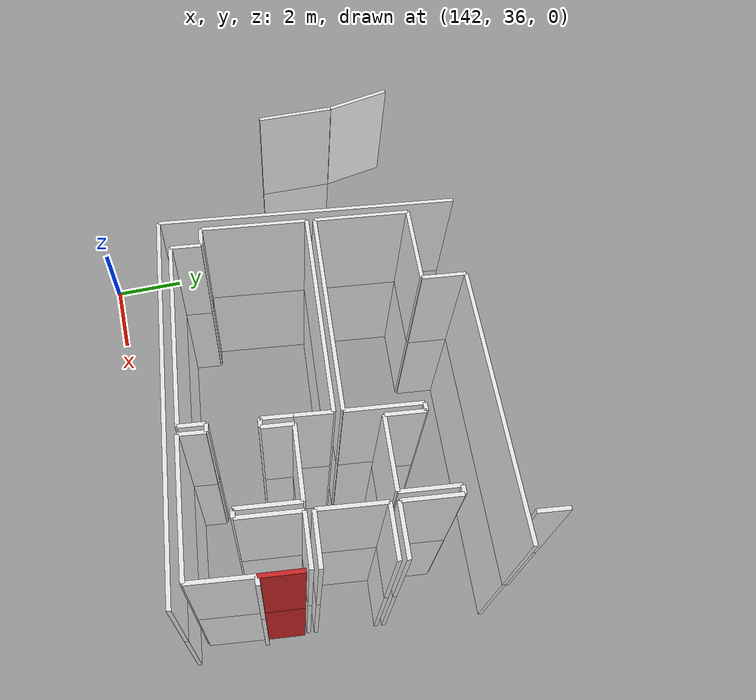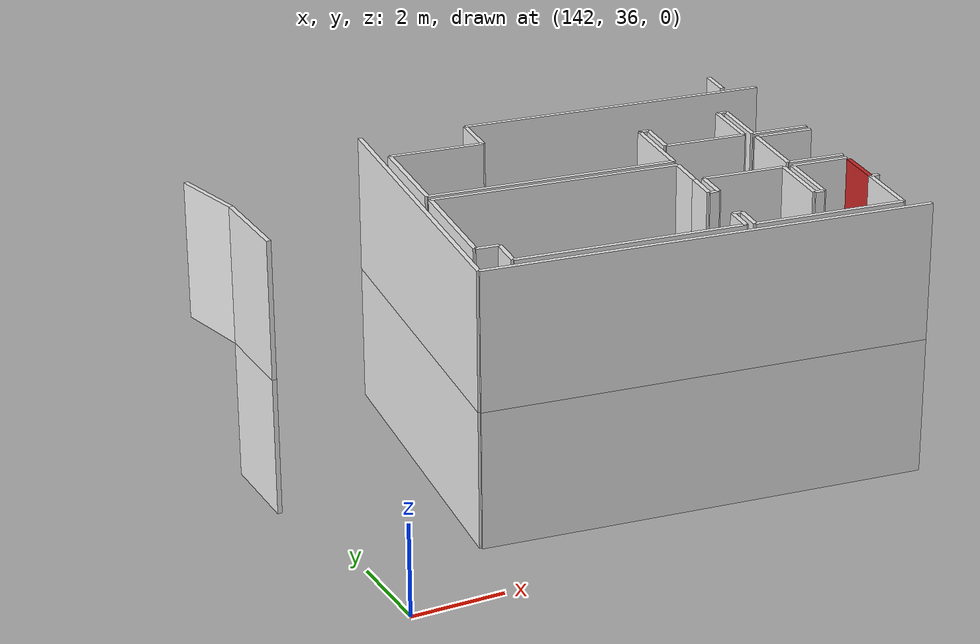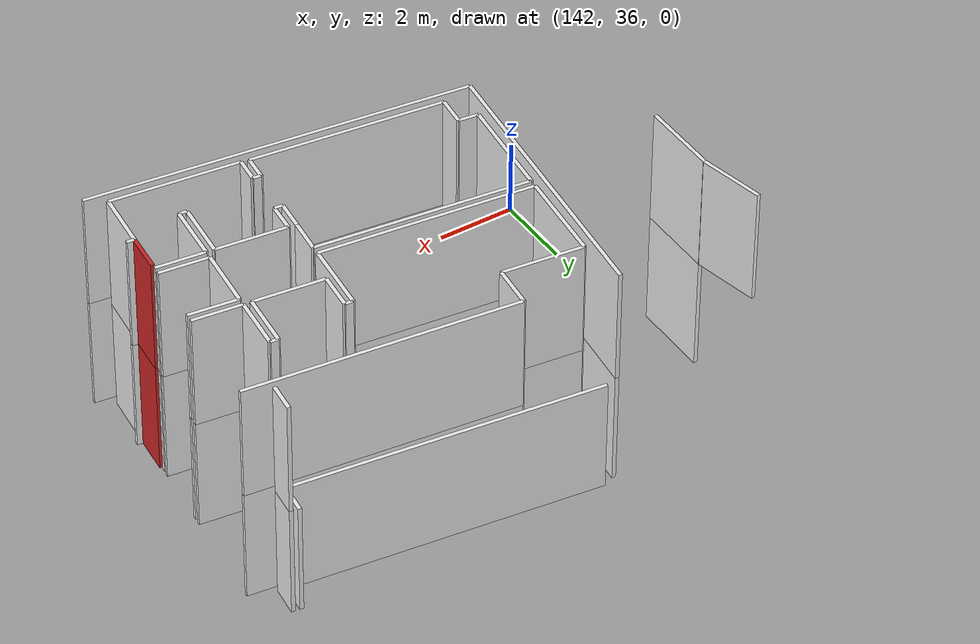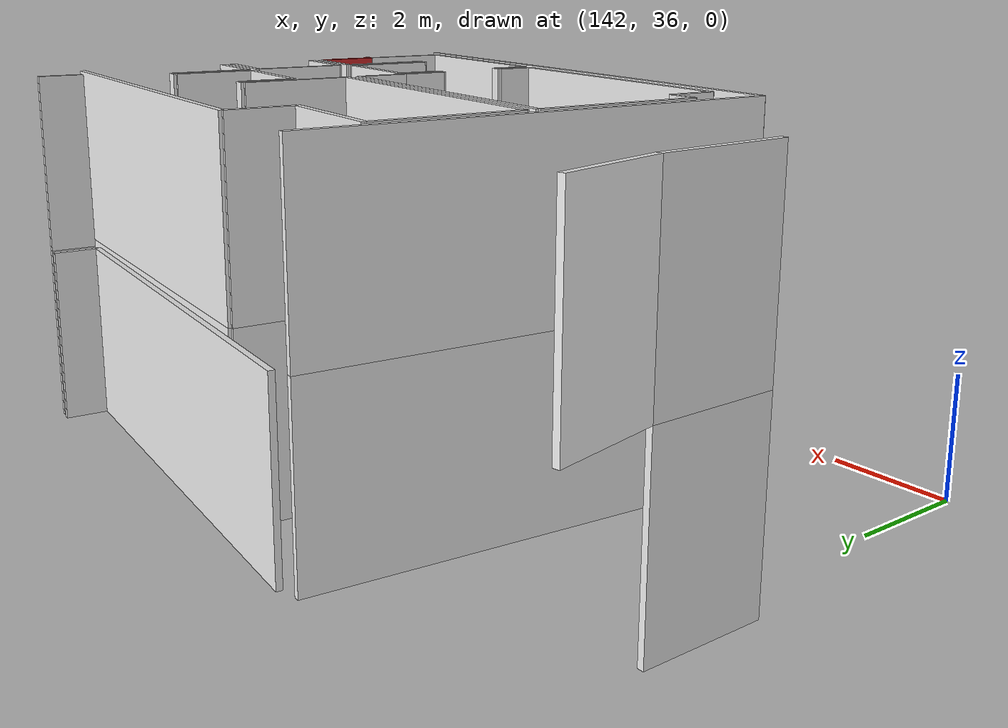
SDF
<sdf version="1.6">
 <world name="default">
  <model name="wall_153.8_39.0_1.5">
   <static>true</static>
   <pose>153.77499999999418 38.99500000011176 1.5 0 0 -1.6814535479881518</pose>
   <link name="link">
    <visual name="visual">
     <geometry><box><size>0.9960923654221514 0.1 3</size></box></geometry>
     <material>
      <script><uri>file://media/materials/scripts/gazebo.material</uri><name>Gazebo/Red</name></script>
     </material>
    </visual>
    <collision name="collision"><geometry><box><size>0.9960923654221514 0.1 3</size></box></geometry></collision>
   </link>
  </model>
  <model name="wall_153.8_39.0_4.5">
   <static>true</static>
   <pose>153.77499999999418 38.99500000011176 4.5 0 0 -1.6814535479881518</pose>
   <link name="link">
    <visual name="visual">
     <geometry><box><size>0.9960923654221514 0.1 3</size></box></geometry>
     <material>
      <script><uri>file://media/materials/scripts/gazebo.material</uri><name>Gazebo/Red</name></script>
     </material>
    </visual>
    <collision name="collision"><geometry><box><size>0.9960923654221514 0.1 3</size></box></geometry></collision>
   </link>
  </model>
  <model name="wall_150.4_39.6_1.5">
   <static>true</static>
   <pose>150.3649999999907 39.61500000022352 1.5 0 0 1.4513674008194029</pose>
   <link name="link">
    <visual name="visual">
     <geometry><box><size>0.7553806987169667 0.1 3</size></box></geometry>
     <material>
      <script><uri>file://media/materials/scripts/gazebo.material</uri><name>Gazebo/White</name></script>
     </material>
    </visual>
    <collision name="collision"><geometry><box><size>0.7553806987169667 0.1 3</size></box></geometry></collision>
   </link>
  </model>
  <model name="wall_150.5_40.4_1.5">
   <static>true</static>
   <pose>150.4649999999965 40.43000000016764 1.5 0 0 1.4464413321830076</pose>
   <link name="link">
    <visual name="visual">
     <geometry><box><size>0.8868483522074317 0.1 3</size></box></geometry>
     <material>
      <script><uri>file://media/materials/scripts/gazebo.material</uri><name>Gazebo/White</name></script>
     </material>
    </visual>
    <collision name="collision"><geometry><box><size>0.8868483522074317 0.1 3</size></box></geometry></collision>
   </link>
  </model>
  <model name="wall_147.8_41.2_1.5">
   <static>true</static>
   <pose>147.83500000002095 41.18500000005588 1.5 0 0 3.0248080581405947</pose>
   <link name="link">
    <visual name="visual">
     <geometry><box><size>5.406829015218547 0.1 3</size></box></geometry>
     <material>
      <script><uri>file://media/materials/scripts/gazebo.material</uri><name>Gazebo/White</name></script>
     </material>
    </visual>
    <collision name="collision"><geometry><box><size>5.406829015218547 0.1 3</size></box></geometry></collision>
   </link>
  </model>
  <model name="wall_145.0_40.2_1.5">
   <static>true</static>
   <pose>144.9900000000198 40.16500000003725 1.5 0 0 -1.690077564147906</pose>
   <link name="link">
    <visual name="visual">
     <geometry><box><size>2.689107658612167 0.1 3</size></box></geometry>
     <material>
      <script><uri>file://media/materials/scripts/gazebo.material</uri><name>Gazebo/White</name></script>
     </material>
    </visual>
    <collision name="collision"><geometry><box><size>2.689107658612167 0.1 3</size></box></geometry></collision>
   </link>
  </model>
  <model name="wall_145.1_38.8_1.5">
   <static>true</static>
   <pose>145.0800000000163 38.800000000046566 1.5 0 0 -0.11942892612851068</pose>
   <link name="link">
    <visual name="visual">
     <geometry><box><size>0.5035871324872246 0.1 3</size></box></geometry>
     <material>
      <script><uri>file://media/materials/scripts/gazebo.material</uri><name>Gazebo/White</name></script>
     </material>
    </visual>
    <collision name="collision"><geometry><box><size>0.5035871324872246 0.1 3</size></box></geometry></collision>
   </link>
  </model>
  <model name="wall_145.3_38.4_1.5">
   <static>true</static>
   <pose>145.2850000000035 38.389999999897555 1.5 0 0 -1.6886684299881376</pose>
   <link name="link">
    <visual name="visual">
     <geometry><box><size>0.7653103947893748 0.1 3</size></box></geometry>
     <material>
      <script><uri>file://media/materials/scripts/gazebo.material</uri><name>Gazebo/White</name></script>
     </material>
    </visual>
    <collision name="collision"><geometry><box><size>0.7653103947893748 0.1 3</size></box></geometry></collision>
   </link>
  </model>
  <model name="wall_147.7_37.7_1.5">
   <static>true</static>
   <pose>147.67499999998836 37.7249999998603 1.5 0 0 -0.11651301006280392</pose>
   <link name="link">
    <visual name="visual">
     <geometry><box><size>4.90324382422122 0.1 3</size></box></geometry>
     <material>
      <script><uri>file://media/materials/scripts/gazebo.material</uri><name>Gazebo/White</name></script>
     </material>
    </visual>
    <collision name="collision"><geometry><box><size>4.90324382422122 0.1 3</size></box></geometry></collision>
   </link>
  </model>
  <model name="wall_150.1_37.8_1.5">
   <static>true</static>
   <pose>150.14499999998952 37.75499999988824 1.5 0 0 1.4601391055905788</pose>
   <link name="link">
    <visual name="visual">
     <geometry><box><size>0.6338769595593153 0.1 3</size></box></geometry>
     <material>
      <script><uri>file://media/materials/scripts/gazebo.material</uri><name>Gazebo/White</name></script>
     </material>
    </visual>
    <collision name="collision"><geometry><box><size>0.6338769595593153 0.1 3</size></box></geometry></collision>
   </link>
  </model>
  <model name="wall_150.3_38.1_1.5">
   <static>true</static>
   <pose>150.27999999999884 38.05499999993481 1.5 0 0 -0.14888994659904642</pose>
   <link name="link">
    <visual name="visual">
     <geometry><box><size>0.20223748414268597 0.1 3</size></box></geometry>
     <material>
      <script><uri>file://media/materials/scripts/gazebo.material</uri><name>Gazebo/White</name></script>
     </material>
    </visual>
    <collision name="collision"><geometry><box><size>0.20223748414268597 0.1 3</size></box></geometry></collision>
   </link>
  </model>
  <model name="wall_150.3_37.7_1.5">
   <static>true</static>
   <pose>150.3399999999965 37.71999999997206 1.5 0 0 -1.695151321341658</pose>
   <link name="link">
    <visual name="visual">
     <geometry><box><size>0.6449806199952839 0.1 3</size></box></geometry>
     <material>
      <script><uri>file://media/materials/scripts/gazebo.material</uri><name>Gazebo/White</name></script>
     </material>
    </visual>
    <collision name="collision"><geometry><box><size>0.6449806199952839 0.1 3</size></box></geometry></collision>
   </link>
  </model>
  <model name="wall_151.9_37.2_1.5">
   <static>true</static>
   <pose>151.9199999999837 37.20999999996275 1.5 0 0 -0.11675057835937525</pose>
   <link name="link">
    <visual name="visual">
     <geometry><box><size>3.2622078413023767 0.1 3</size></box></geometry>
     <material>
      <script><uri>file://media/materials/scripts/gazebo.material</uri><name>Gazebo/White</name></script>
     </material>
    </visual>
    <collision name="collision"><geometry><box><size>3.2622078413023767 0.1 3</size></box></geometry></collision>
   </link>
  </model>
  <model name="wall_153.6_37.8_1.5">
   <static>true</static>
   <pose>153.62999999997555 37.76000000000931 1.5 0 0 1.449769106988834</pose>
   <link name="link">
    <visual name="visual">
     <geometry><box><size>1.4909057649436974 0.1 3</size></box></geometry>
     <material>
      <script><uri>file://media/materials/scripts/gazebo.material</uri><name>Gazebo/White</name></script>
     </material>
    </visual>
    <collision name="collision"><geometry><box><size>1.4909057649436974 0.1 3</size></box></geometry></collision>
   </link>
  </model>
  <model name="wall_153.2_39.7_1.5">
   <static>true</static>
   <pose>153.22000000000116 39.65999999991618 1.5 0 0 3.0291655226601732</pose>
   <link name="link">
    <visual name="visual">
     <geometry><box><size>1.2478781992477335 0.1 3</size></box></geometry>
     <material>
      <script><uri>file://media/materials/scripts/gazebo.material</uri><name>Gazebo/White</name></script>
     </material>
    </visual>
    <collision name="collision"><geometry><box><size>1.2478781992477335 0.1 3</size></box></geometry></collision>
   </link>
  </model>
  <model name="wall_152.5_39.0_1.5">
   <static>true</static>
   <pose>152.51499999998487 38.98999999999069 1.5 0 0 -1.6851599802083586</pose>
   <link name="link">
    <visual name="visual">
     <geometry><box><size>1.4897315194152685 0.1 3</size></box></geometry>
     <material>
      <script><uri>file://media/materials/scripts/gazebo.material</uri><name>Gazebo/White</name></script>
     </material>
    </visual>
    <collision name="collision"><geometry><box><size>1.4897315194152685 0.1 3</size></box></geometry></collision>
   </link>
  </model>
  <model name="wall_152.3_38.3_1.5">
   <static>true</static>
   <pose>152.3299999999872 38.26000000000931 1.5 0 0 3.0419240010121844</pose>
   <link name="link">
    <visual name="visual">
     <geometry><box><size>0.20099751243585498 0.1 3</size></box></geometry>
     <material>
      <script><uri>file://media/materials/scripts/gazebo.material</uri><name>Gazebo/White</name></script>
     </material>
    </visual>
    <collision name="collision"><geometry><box><size>0.20099751243585498 0.1 3</size></box></geometry></collision>
   </link>
  </model>
  <model name="wall_152.3_39.0_1.5">
   <static>true</static>
   <pose>152.31500000000233 39.01000000000931 1.5 0 0 1.4564326733426174</pose>
   <link name="link">
    <visual name="visual">
     <geometry><box><size>1.4897315194219107 0.1 3</size></box></geometry>
     <material>
      <script><uri>file://media/materials/scripts/gazebo.material</uri><name>Gazebo/White</name></script>
     </material>
    </visual>
    <collision name="collision"><geometry><box><size>1.4897315194219107 0.1 3</size></box></geometry></collision>
   </link>
  </model>
  <model name="wall_151.5_39.9_1.5">
   <static>true</static>
   <pose>151.50500000000466 39.85499999998137 1.5 0 0 3.0248080581431034</pose>
   <link name="link">
    <visual name="visual">
     <geometry><box><size>1.8022763384447233 0.1 3</size></box></geometry>
     <material>
      <script><uri>file://media/materials/scripts/gazebo.material</uri><name>Gazebo/White</name></script>
     </material>
    </visual>
    <collision name="collision"><geometry><box><size>1.8022763384447233 0.1 3</size></box></geometry></collision>
   </link>
  </model>
  <model name="wall_150.6_39.6_1.5">
   <static>true</static>
   <pose>150.57000000000698 39.59000000008382 1.5 0 0 -1.6784861976067038</pose>
   <link name="link">
    <visual name="visual">
     <geometry><box><size>0.7443117623918901 0.1 3</size></box></geometry>
     <material>
      <script><uri>file://media/materials/scripts/gazebo.material</uri><name>Gazebo/White</name></script>
     </material>
    </visual>
    <collision name="collision"><geometry><box><size>0.7443117623918901 0.1 3</size></box></geometry></collision>
   </link>
  </model>
  <model name="wall_150.4_39.2_1.5">
   <static>true</static>
   <pose>150.42500000001746 39.230000000214204 1.5 0 0 3.0466409471685547</pose>
   <link name="link">
    <visual name="visual">
     <geometry><box><size>0.21095023111991618 0.1 3</size></box></geometry>
     <material>
      <script><uri>file://media/materials/scripts/gazebo.material</uri><name>Gazebo/White</name></script>
     </material>
    </visual>
    <collision name="collision"><geometry><box><size>0.21095023111991618 0.1 3</size></box></geometry></collision>
   </link>
  </model>
  <model name="wall_153.5_44.8_1.5">
   <static>true</static>
   <pose>153.52499999999418 44.81499999994412 1.5 0 0 -1.6902252528468988</pose>
   <link name="link">
    <visual name="visual">
     <geometry><box><size>0.7553806987239018 0.1 3</size></box></geometry>
     <material>
      <script><uri>file://media/materials/scripts/gazebo.material</uri><name>Gazebo/White</name></script>
     </material>
    </visual>
    <collision name="collision"><geometry><box><size>0.7553806987239018 0.1 3</size></box></geometry></collision>
   </link>
  </model>
  <model name="wall_149.6_44.9_1.5">
   <static>true</static>
   <pose>149.55499999999302 44.91500000003725 1.5 0 0 3.0211592075440525</pose>
   <link name="link">
    <visual name="visual">
     <geometry><box><size>7.907275131168029 0.1 3</size></box></geometry>
     <material>
      <script><uri>file://media/materials/scripts/gazebo.material</uri><name>Gazebo/White</name></script>
     </material>
    </visual>
    <collision name="collision"><geometry><box><size>7.907275131168029 0.1 3</size></box></geometry></collision>
   </link>
  </model>
  <model name="wall_153.4_41.4_1.5">
   <static>true</static>
   <pose>153.43499999999767 41.43499999982305 1.5 0 0 3.022163727644903</pose>
   <link name="link">
    <visual name="visual">
     <geometry><box><size>1.258967831190321 0.1 3</size></box></geometry>
     <material>
      <script><uri>file://media/materials/scripts/gazebo.material</uri><name>Gazebo/White</name></script>
     </material>
    </visual>
    <collision name="collision"><geometry><box><size>1.258967831190321 0.1 3</size></box></geometry></collision>
   </link>
  </model>
  <model name="wall_152.7_40.7_1.5">
   <static>true</static>
   <pose>152.7149999999965 40.71999999997206 1.5 0 0 -1.6904748161031404</pose>
   <link name="link">
    <visual name="visual">
     <geometry><box><size>1.5913830458958753 0.1 3</size></box></geometry>
     <material>
      <script><uri>file://media/materials/scripts/gazebo.material</uri><name>Gazebo/White</name></script>
     </material>
    </visual>
    <collision name="collision"><geometry><box><size>1.5913830458958753 0.1 3</size></box></geometry></collision>
   </link>
  </model>
  <model name="wall_153.2_39.9_1.5">
   <static>true</static>
   <pose>153.24499999999534 39.85499999998137 1.5 0 0 -0.11942892631213106</pose>
   <link name="link">
    <visual name="visual">
     <geometry><box><size>1.2589678312458021 0.1 3</size></box></geometry>
     <material>
      <script><uri>file://media/materials/scripts/gazebo.material</uri><name>Gazebo/White</name></script>
     </material>
    </visual>
    <collision name="collision"><geometry><box><size>1.2589678312458021 0.1 3</size></box></geometry></collision>
   </link>
  </model>
  <model name="wall_153.8_38.5_1.5">
   <static>true</static>
   <pose>153.81499999997322 38.48999999999069 1.5 0 0 3.0367157147638757</pose>
   <link name="link">
    <visual name="visual">
     <geometry><box><size>0.19104973174969345 0.1 3</size></box></geometry>
     <material>
      <script><uri>file://media/materials/scripts/gazebo.material</uri><name>Gazebo/White</name></script>
     </material>
    </visual>
    <collision name="collision"><geometry><box><size>0.19104973174969345 0.1 3</size></box></geometry></collision>
   </link>
  </model>
  <model name="wall_153.7_44.8_1.5">
   <static>true</static>
   <pose>153.72500000000582 44.79000000003725 1.5 0 0 1.4497691069877865</pose>
   <link name="link">
    <visual name="visual">
     <geometry><box><size>0.74545288270649 0.1 3</size></box></geometry>
     <material>
      <script><uri>file://media/materials/scripts/gazebo.material</uri><name>Gazebo/White</name></script>
     </material>
    </visual>
    <collision name="collision"><geometry><box><size>0.74545288270649 0.1 3</size></box></geometry></collision>
   </link>
  </model>
  <model name="wall_153.5_41.6_1.5">
   <static>true</static>
   <pose>153.4550000000163 41.63500000000931 1.5 0 0 3.022163727644903</pose>
   <link name="link">
    <visual name="visual">
     <geometry><box><size>1.258967831190321 0.1 3</size></box></geometry>
     <material>
      <script><uri>file://media/materials/scripts/gazebo.material</uri><name>Gazebo/White</name></script>
     </material>
    </visual>
    <collision name="collision"><geometry><box><size>1.258967831190321 0.1 3</size></box></geometry></collision>
   </link>
  </model>
  <model name="wall_152.9_42.4_1.5">
   <static>true</static>
   <pose>152.9100000000035 42.39999999990687 1.5 0 0 1.4553696664370197</pose>
   <link name="link">
    <visual name="visual">
     <geometry><box><size>1.3892443988310157 0.1 3</size></box></geometry>
     <material>
      <script><uri>file://media/materials/scripts/gazebo.material</uri><name>Gazebo/White</name></script>
     </material>
    </visual>
    <collision name="collision"><geometry><box><size>1.3892443988310157 0.1 3</size></box></geometry></collision>
   </link>
  </model>
  <model name="wall_152.9_43.1_1.5">
   <static>true</static>
   <pose>152.88999999998487 43.0999999998603 1.5 0 0 3.0419240010121844</pose>
   <link name="link">
    <visual name="visual">
     <geometry><box><size>0.20099751243585498 0.1 3</size></box></geometry>
     <material>
      <script><uri>file://media/materials/scripts/gazebo.material</uri><name>Gazebo/White</name></script>
     </material>
    </visual>
    <collision name="collision"><geometry><box><size>0.20099751243585498 0.1 3</size></box></geometry></collision>
   </link>
  </model>
  <model name="wall_152.7_42.4_1.5">
   <static>true</static>
   <pose>152.70999999999185 42.419999999925494 1.5 0 0 -1.6862229871527734</pose>
   <link name="link">
    <visual name="visual">
     <geometry><box><size>1.3892443988310157 0.1 3</size></box></geometry>
     <material>
      <script><uri>file://media/materials/scripts/gazebo.material</uri><name>Gazebo/White</name></script>
     </material>
    </visual>
    <collision name="collision"><geometry><box><size>1.3892443988310157 0.1 3</size></box></geometry></collision>
   </link>
  </model>
  <model name="wall_151.7_41.8_1.5">
   <static>true</static>
   <pose>151.73500000001513 41.83499999996275 1.5 0 0 3.02480805813934</pose>
   <link name="link">
    <visual name="visual">
     <geometry><box><size>1.8022763383869123 0.1 3</size></box></geometry>
     <material>
      <script><uri>file://media/materials/scripts/gazebo.material</uri><name>Gazebo/White</name></script>
     </material>
    </visual>
    <collision name="collision"><geometry><box><size>1.8022763383869123 0.1 3</size></box></geometry></collision>
   </link>
  </model>
  <model name="wall_150.9_42.4_1.5">
   <static>true</static>
   <pose>150.89500000001863 42.40999999991618 1.5 0 0 1.4543048661080447</pose>
   <link name="link">
    <visual name="visual">
     <geometry><box><size>0.9464142855493431 0.1 3</size></box></geometry>
     <material>
      <script><uri>file://media/materials/scripts/gazebo.material</uri><name>Gazebo/White</name></script>
     </material>
    </visual>
    <collision name="collision"><geometry><box><size>0.9464142855493431 0.1 3</size></box></geometry></collision>
   </link>
  </model>
  <model name="wall_150.9_42.9_1.5">
   <static>true</static>
   <pose>150.85000000000582 42.889999999897555 1.5 0 0 3.0419240010121844</pose>
   <link name="link">
    <visual name="visual">
     <geometry><box><size>0.20099751243585498 0.1 3</size></box></geometry>
     <material>
      <script><uri>file://media/materials/scripts/gazebo.material</uri><name>Gazebo/White</name></script>
     </material>
    </visual>
    <collision name="collision"><geometry><box><size>0.20099751243585498 0.1 3</size></box></geometry></collision>
   </link>
  </model>
  <model name="wall_150.6_42.0_1.5">
   <static>true</static>
   <pose>150.64499999998952 41.98999999999069 1.5 0 0 -1.6856729322336463</pose>
   <link name="link">
    <visual name="visual">
     <geometry><box><size>1.8320753257982048 0.1 3</size></box></geometry>
     <material>
      <script><uri>file://media/materials/scripts/gazebo.material</uri><name>Gazebo/White</name></script>
     </material>
    </visual>
    <collision name="collision"><geometry><box><size>1.8320753257982048 0.1 3</size></box></geometry></collision>
   </link>
  </model>
  <model name="wall_147.9_41.4_1.5">
   <static>true</static>
   <pose>147.85499999998137 41.390000000130385 1.5 0 0 3.026645366783984</pose>
   <link name="link">
    <visual name="visual">
     <geometry><box><size>5.405672946089928 0.1 3</size></box></geometry>
     <material>
      <script><uri>file://media/materials/scripts/gazebo.material</uri><name>Gazebo/White</name></script>
     </material>
    </visual>
    <collision name="collision"><geometry><box><size>5.405672946089928 0.1 3</size></box></geometry></collision>
   </link>
  </model>
  <model name="wall_145.3_42.9_1.5">
   <static>true</static>
   <pose>145.30499999999302 42.88500000000931 1.5 0 0 1.4573613349631278</pose>
   <link name="link">
    <visual name="visual">
     <geometry><box><size>2.385330165476587 0.1 3</size></box></geometry>
     <material>
      <script><uri>file://media/materials/scripts/gazebo.material</uri><name>Gazebo/White</name></script>
     </material>
    </visual>
    <collision name="collision"><geometry><box><size>2.385330165476587 0.1 3</size></box></geometry></collision>
   </link>
  </model>
  <model name="wall_146.5_43.9_1.5">
   <static>true</static>
   <pose>146.45999999999185 43.949999999953434 1.5 0 0 -0.11710874445097873</pose>
   <link name="link">
    <visual name="visual">
     <geometry><box><size>2.0540691321857394 0.1 3</size></box></geometry>
     <material>
      <script><uri>file://media/materials/scripts/gazebo.material</uri><name>Gazebo/White</name></script>
     </material>
    </visual>
    <collision name="collision"><geometry><box><size>2.0540691321857394 0.1 3</size></box></geometry></collision>
   </link>
  </model>
  <model name="wall_147.5_44.4_1.5">
   <static>true</static>
   <pose>147.53999999997905 44.37000000011176 1.5 0 0 1.460139105632832</pose>
   <link name="link">
    <visual name="visual">
     <geometry><box><size>1.086646216650026 0.1 3</size></box></geometry>
     <material>
      <script><uri>file://media/materials/scripts/gazebo.material</uri><name>Gazebo/White</name></script>
     </material>
    </visual>
    <collision name="collision"><geometry><box><size>1.086646216650026 0.1 3</size></box></geometry></collision>
   </link>
  </model>
  <model name="wall_151.0_44.5_1.5">
   <static>true</static>
   <pose>150.9899999999907 44.5250000001397 1.5 0 0 -0.11308479368536209</pose>
   <link name="link">
    <visual name="visual">
     <geometry><box><size>6.8235841022447685 0.1 3</size></box></geometry>
     <material>
      <script><uri>file://media/materials/scripts/gazebo.material</uri><name>Gazebo/White</name></script>
     </material>
    </visual>
    <collision name="collision"><geometry><box><size>6.8235841022447685 0.1 3</size></box></geometry></collision>
   </link>
  </model>
  <model name="wall_141.4_42.0_1.5">
   <static>true</static>
   <pose>141.44000000000233 42.03499999991618 1.5 0 0 1.5607464138912803</pose>
   <link name="link">
    <visual name="visual">
     <geometry><box><size>1.9901004997328684 0.1 3</size></box></geometry>
     <material>
      <script><uri>file://media/materials/scripts/gazebo.material</uri><name>Gazebo/White</name></script>
     </material>
    </visual>
    <collision name="collision"><geometry><box><size>1.9901004997328684 0.1 3</size></box></geometry></collision>
   </link>
  </model>
  <model name="wall_144.9_41.6_1.5">
   <static>true</static>
   <pose>144.8649999999907 41.574999999953434 1.5 0 0 -1.6916990911057475</pose>
   <link name="link">
    <visual name="visual">
     <geometry><box><size>7.545077865498275 0.1 3</size></box></geometry>
     <material>
      <script><uri>file://media/materials/scripts/gazebo.material</uri><name>Gazebo/White</name></script>
     </material>
    </visual>
    <collision name="collision"><geometry><box><size>7.545077865498275 0.1 3</size></box></geometry></collision>
   </link>
  </model>
  <model name="wall_149.2_37.3_1.5">
   <static>true</static>
   <pose>149.20999999999185 37.25500000012107 1.5 0 0 -0.11922354502951144</pose>
   <link name="link">
    <visual name="visual">
     <geometry><box><size>9.668634857127264 0.1 3</size></box></geometry>
     <material>
      <script><uri>file://media/materials/scripts/gazebo.material</uri><name>Gazebo/White</name></script>
     </material>
    </visual>
    <collision name="collision"><geometry><box><size>9.668634857127264 0.1 3</size></box></geometry></collision>
   </link>
  </model>
  <model name="wall_150.4_39.6_4.5">
   <static>true</static>
   <pose>150.3649999999907 39.61500000022352 4.5 0 0 1.4513674008194029</pose>
   <link name="link">
    <visual name="visual">
     <geometry><box><size>0.7553806987169667 0.1 3</size></box></geometry>
     <material>
      <script><uri>file://media/materials/scripts/gazebo.material</uri><name>Gazebo/White</name></script>
     </material>
    </visual>
    <collision name="collision"><geometry><box><size>0.7553806987169667 0.1 3</size></box></geometry></collision>
   </link>
  </model>
  <model name="wall_150.5_40.4_4.5">
   <static>true</static>
   <pose>150.4649999999965 40.43000000016764 4.5 0 0 1.4464413321830076</pose>
   <link name="link">
    <visual name="visual">
     <geometry><box><size>0.8868483522074317 0.1 3</size></box></geometry>
     <material>
      <script><uri>file://media/materials/scripts/gazebo.material</uri><name>Gazebo/White</name></script>
     </material>
    </visual>
    <collision name="collision"><geometry><box><size>0.8868483522074317 0.1 3</size></box></geometry></collision>
   </link>
  </model>
  <model name="wall_147.8_41.2_4.5">
   <static>true</static>
   <pose>147.83500000002095 41.18500000005588 4.5 0 0 3.0248080581405947</pose>
   <link name="link">
    <visual name="visual">
     <geometry><box><size>5.406829015218547 0.1 3</size></box></geometry>
     <material>
      <script><uri>file://media/materials/scripts/gazebo.material</uri><name>Gazebo/White</name></script>
     </material>
    </visual>
    <collision name="collision"><geometry><box><size>5.406829015218547 0.1 3</size></box></geometry></collision>
   </link>
  </model>
  <model name="wall_145.0_40.2_4.5">
   <static>true</static>
   <pose>144.9900000000198 40.16500000003725 4.5 0 0 -1.690077564147906</pose>
   <link name="link">
    <visual name="visual">
     <geometry><box><size>2.689107658612167 0.1 3</size></box></geometry>
     <material>
      <script><uri>file://media/materials/scripts/gazebo.material</uri><name>Gazebo/White</name></script>
     </material>
    </visual>
    <collision name="collision"><geometry><box><size>2.689107658612167 0.1 3</size></box></geometry></collision>
   </link>
  </model>
  <model name="wall_145.1_38.8_4.5">
   <static>true</static>
   <pose>145.0800000000163 38.800000000046566 4.5 0 0 -0.11942892612851068</pose>
   <link name="link">
    <visual name="visual">
     <geometry><box><size>0.5035871324872246 0.1 3</size></box></geometry>
     <material>
      <script><uri>file://media/materials/scripts/gazebo.material</uri><name>Gazebo/White</name></script>
     </material>
    </visual>
    <collision name="collision"><geometry><box><size>0.5035871324872246 0.1 3</size></box></geometry></collision>
   </link>
  </model>
  <model name="wall_145.3_38.4_4.5">
   <static>true</static>
   <pose>145.2850000000035 38.389999999897555 4.5 0 0 -1.6886684299881376</pose>
   <link name="link">
    <visual name="visual">
     <geometry><box><size>0.7653103947893748 0.1 3</size></box></geometry>
     <material>
      <script><uri>file://media/materials/scripts/gazebo.material</uri><name>Gazebo/White</name></script>
     </material>
    </visual>
    <collision name="collision"><geometry><box><size>0.7653103947893748 0.1 3</size></box></geometry></collision>
   </link>
  </model>
  <model name="wall_147.7_37.7_4.5">
   <static>true</static>
   <pose>147.67499999998836 37.7249999998603 4.5 0 0 -0.11651301006280392</pose>
   <link name="link">
    <visual name="visual">
     <geometry><box><size>4.90324382422122 0.1 3</size></box></geometry>
     <material>
      <script><uri>file://media/materials/scripts/gazebo.material</uri><name>Gazebo/White</name></script>
     </material>
    </visual>
    <collision name="collision"><geometry><box><size>4.90324382422122 0.1 3</size></box></geometry></collision>
   </link>
  </model>
  <model name="wall_150.1_37.8_4.5">
   <static>true</static>
   <pose>150.14499999998952 37.75499999988824 4.5 0 0 1.4601391055905788</pose>
   <link name="link">
    <visual name="visual">
     <geometry><box><size>0.6338769595593153 0.1 3</size></box></geometry>
     <material>
      <script><uri>file://media/materials/scripts/gazebo.material</uri><name>Gazebo/White</name></script>
     </material>
    </visual>
    <collision name="collision"><geometry><box><size>0.6338769595593153 0.1 3</size></box></geometry></collision>
   </link>
  </model>
  <model name="wall_150.3_38.1_4.5">
   <static>true</static>
   <pose>150.27999999999884 38.05499999993481 4.5 0 0 -0.14888994659904642</pose>
   <link name="link">
    <visual name="visual">
     <geometry><box><size>0.20223748414268597 0.1 3</size></box></geometry>
     <material>
      <script><uri>file://media/materials/scripts/gazebo.material</uri><name>Gazebo/White</name></script>
     </material>
    </visual>
    <collision name="collision"><geometry><box><size>0.20223748414268597 0.1 3</size></box></geometry></collision>
   </link>
  </model>
  <model name="wall_150.3_37.7_4.5">
   <static>true</static>
   <pose>150.3399999999965 37.71999999997206 4.5 0 0 -1.695151321341658</pose>
   <link name="link">
    <visual name="visual">
     <geometry><box><size>0.6449806199952839 0.1 3</size></box></geometry>
     <material>
      <script><uri>file://media/materials/scripts/gazebo.material</uri><name>Gazebo/White</name></script>
     </material>
    </visual>
    <collision name="collision"><geometry><box><size>0.6449806199952839 0.1 3</size></box></geometry></collision>
   </link>
  </model>
  <model name="wall_151.9_37.2_4.5">
   <static>true</static>
   <pose>151.9199999999837 37.20999999996275 4.5 0 0 -0.11675057835937525</pose>
   <link name="link">
    <visual name="visual">
     <geometry><box><size>3.2622078413023767 0.1 3</size></box></geometry>
     <material>
      <script><uri>file://media/materials/scripts/gazebo.material</uri><name>Gazebo/White</name></script>
     </material>
    </visual>
    <collision name="collision"><geometry><box><size>3.2622078413023767 0.1 3</size></box></geometry></collision>
   </link>
  </model>
  <model name="wall_153.6_37.8_4.5">
   <static>true</static>
   <pose>153.62999999997555 37.76000000000931 4.5 0 0 1.449769106988834</pose>
   <link name="link">
    <visual name="visual">
     <geometry><box><size>1.4909057649436974 0.1 3</size></box></geometry>
     <material>
      <script><uri>file://media/materials/scripts/gazebo.material</uri><name>Gazebo/White</name></script>
     </material>
    </visual>
    <collision name="collision"><geometry><box><size>1.4909057649436974 0.1 3</size></box></geometry></collision>
   </link>
  </model>
  <model name="wall_153.2_39.7_4.5">
   <static>true</static>
   <pose>153.22000000000116 39.65999999991618 4.5 0 0 3.0291655226601732</pose>
   <link name="link">
    <visual name="visual">
     <geometry><box><size>1.2478781992477335 0.1 3</size></box></geometry>
     <material>
      <script><uri>file://media/materials/scripts/gazebo.material</uri><name>Gazebo/White</name></script>
     </material>
    </visual>
    <collision name="collision"><geometry><box><size>1.2478781992477335 0.1 3</size></box></geometry></collision>
   </link>
  </model>
  <model name="wall_152.5_39.0_4.5">
   <static>true</static>
   <pose>152.51499999998487 38.98999999999069 4.5 0 0 -1.6851599802083586</pose>
   <link name="link">
    <visual name="visual">
     <geometry><box><size>1.4897315194152685 0.1 3</size></box></geometry>
     <material>
      <script><uri>file://media/materials/scripts/gazebo.material</uri><name>Gazebo/White</name></script>
     </material>
    </visual>
    <collision name="collision"><geometry><box><size>1.4897315194152685 0.1 3</size></box></geometry></collision>
   </link>
  </model>
  <model name="wall_152.3_38.3_4.5">
   <static>true</static>
   <pose>152.3299999999872 38.26000000000931 4.5 0 0 3.0419240010121844</pose>
   <link name="link">
    <visual name="visual">
     <geometry><box><size>0.20099751243585498 0.1 3</size></box></geometry>
     <material>
      <script><uri>file://media/materials/scripts/gazebo.material</uri><name>Gazebo/White</name></script>
     </material>
    </visual>
    <collision name="collision"><geometry><box><size>0.20099751243585498 0.1 3</size></box></geometry></collision>
   </link>
  </model>
  <model name="wall_152.3_39.0_4.5">
   <static>true</static>
   <pose>152.31500000000233 39.01000000000931 4.5 0 0 1.4564326733426174</pose>
   <link name="link">
    <visual name="visual">
     <geometry><box><size>1.4897315194219107 0.1 3</size></box></geometry>
     <material>
      <script><uri>file://media/materials/scripts/gazebo.material</uri><name>Gazebo/White</name></script>
     </material>
    </visual>
    <collision name="collision"><geometry><box><size>1.4897315194219107 0.1 3</size></box></geometry></collision>
   </link>
  </model>
  <model name="wall_151.5_39.9_4.5">
   <static>true</static>
   <pose>151.50500000000466 39.85499999998137 4.5 0 0 3.0248080581431034</pose>
   <link name="link">
    <visual name="visual">
     <geometry><box><size>1.8022763384447233 0.1 3</size></box></geometry>
     <material>
      <script><uri>file://media/materials/scripts/gazebo.material</uri><name>Gazebo/White</name></script>
     </material>
    </visual>
    <collision name="collision"><geometry><box><size>1.8022763384447233 0.1 3</size></box></geometry></collision>
   </link>
  </model>
  <model name="wall_150.6_39.6_4.5">
   <static>true</static>
   <pose>150.57000000000698 39.59000000008382 4.5 0 0 -1.6784861976067038</pose>
   <link name="link">
    <visual name="visual">
     <geometry><box><size>0.7443117623918901 0.1 3</size></box></geometry>
     <material>
      <script><uri>file://media/materials/scripts/gazebo.material</uri><name>Gazebo/White</name></script>
     </material>
    </visual>
    <collision name="collision"><geometry><box><size>0.7443117623918901 0.1 3</size></box></geometry></collision>
   </link>
  </model>
  <model name="wall_150.4_39.2_4.5">
   <static>true</static>
   <pose>150.42500000001746 39.230000000214204 4.5 0 0 3.0466409471685547</pose>
   <link name="link">
    <visual name="visual">
     <geometry><box><size>0.21095023111991618 0.1 3</size></box></geometry>
     <material>
      <script><uri>file://media/materials/scripts/gazebo.material</uri><name>Gazebo/White</name></script>
     </material>
    </visual>
    <collision name="collision"><geometry><box><size>0.21095023111991618 0.1 3</size></box></geometry></collision>
   </link>
  </model>
  <model name="wall_153.4_41.4_4.5">
   <static>true</static>
   <pose>153.43499999999767 41.43499999982305 4.5 0 0 3.022163727644903</pose>
   <link name="link">
    <visual name="visual">
     <geometry><box><size>1.258967831190321 0.1 3</size></box></geometry>
     <material>
      <script><uri>file://media/materials/scripts/gazebo.material</uri><name>Gazebo/White</name></script>
     </material>
    </visual>
    <collision name="collision"><geometry><box><size>1.258967831190321 0.1 3</size></box></geometry></collision>
   </link>
  </model>
  <model name="wall_152.7_40.7_4.5">
   <static>true</static>
   <pose>152.7149999999965 40.71999999997206 4.5 0 0 -1.6904748161031404</pose>
   <link name="link">
    <visual name="visual">
     <geometry><box><size>1.5913830458958753 0.1 3</size></box></geometry>
     <material>
      <script><uri>file://media/materials/scripts/gazebo.material</uri><name>Gazebo/White</name></script>
     </material>
    </visual>
    <collision name="collision"><geometry><box><size>1.5913830458958753 0.1 3</size></box></geometry></collision>
   </link>
  </model>
  <model name="wall_153.2_39.9_4.5">
   <static>true</static>
   <pose>153.24499999999534 39.85499999998137 4.5 0 0 -0.11942892631213106</pose>
   <link name="link">
    <visual name="visual">
     <geometry><box><size>1.2589678312458021 0.1 3</size></box></geometry>
     <material>
      <script><uri>file://media/materials/scripts/gazebo.material</uri><name>Gazebo/White</name></script>
     </material>
    </visual>
    <collision name="collision"><geometry><box><size>1.2589678312458021 0.1 3</size></box></geometry></collision>
   </link>
  </model>
  <model name="wall_153.8_38.5_4.5">
   <static>true</static>
   <pose>153.81499999997322 38.48999999999069 4.5 0 0 3.0367157147638757</pose>
   <link name="link">
    <visual name="visual">
     <geometry><box><size>0.19104973174969345 0.1 3</size></box></geometry>
     <material>
      <script><uri>file://media/materials/scripts/gazebo.material</uri><name>Gazebo/White</name></script>
     </material>
    </visual>
    <collision name="collision"><geometry><box><size>0.19104973174969345 0.1 3</size></box></geometry></collision>
   </link>
  </model>
  <model name="wall_153.7_44.8_4.5">
   <static>true</static>
   <pose>153.72500000000582 44.79000000003725 4.5 0 0 1.4497691069877865</pose>
   <link name="link">
    <visual name="visual">
     <geometry><box><size>0.74545288270649 0.1 3</size></box></geometry>
     <material>
      <script><uri>file://media/materials/scripts/gazebo.material</uri><name>Gazebo/White</name></script>
     </material>
    </visual>
    <collision name="collision"><geometry><box><size>0.74545288270649 0.1 3</size></box></geometry></collision>
   </link>
  </model>
  <model name="wall_153.5_41.6_4.5">
   <static>true</static>
   <pose>153.4550000000163 41.63500000000931 4.5 0 0 3.022163727644903</pose>
   <link name="link">
    <visual name="visual">
     <geometry><box><size>1.258967831190321 0.1 3</size></box></geometry>
     <material>
      <script><uri>file://media/materials/scripts/gazebo.material</uri><name>Gazebo/White</name></script>
     </material>
    </visual>
    <collision name="collision"><geometry><box><size>1.258967831190321 0.1 3</size></box></geometry></collision>
   </link>
  </model>
  <model name="wall_152.9_42.4_4.5">
   <static>true</static>
   <pose>152.9100000000035 42.39999999990687 4.5 0 0 1.4553696664370197</pose>
   <link name="link">
    <visual name="visual">
     <geometry><box><size>1.3892443988310157 0.1 3</size></box></geometry>
     <material>
      <script><uri>file://media/materials/scripts/gazebo.material</uri><name>Gazebo/White</name></script>
     </material>
    </visual>
    <collision name="collision"><geometry><box><size>1.3892443988310157 0.1 3</size></box></geometry></collision>
   </link>
  </model>
  <model name="wall_152.9_43.1_4.5">
   <static>true</static>
   <pose>152.88999999998487 43.0999999998603 4.5 0 0 3.0419240010121844</pose>
   <link name="link">
    <visual name="visual">
     <geometry><box><size>0.20099751243585498 0.1 3</size></box></geometry>
     <material>
      <script><uri>file://media/materials/scripts/gazebo.material</uri><name>Gazebo/White</name></script>
     </material>
    </visual>
    <collision name="collision"><geometry><box><size>0.20099751243585498 0.1 3</size></box></geometry></collision>
   </link>
  </model>
  <model name="wall_152.7_42.4_4.5">
   <static>true</static>
   <pose>152.70999999999185 42.419999999925494 4.5 0 0 -1.6862229871527734</pose>
   <link name="link">
    <visual name="visual">
     <geometry><box><size>1.3892443988310157 0.1 3</size></box></geometry>
     <material>
      <script><uri>file://media/materials/scripts/gazebo.material</uri><name>Gazebo/White</name></script>
     </material>
    </visual>
    <collision name="collision"><geometry><box><size>1.3892443988310157 0.1 3</size></box></geometry></collision>
   </link>
  </model>
  <model name="wall_151.7_41.8_4.5">
   <static>true</static>
   <pose>151.73500000001513 41.83499999996275 4.5 0 0 3.02480805813934</pose>
   <link name="link">
    <visual name="visual">
     <geometry><box><size>1.8022763383869123 0.1 3</size></box></geometry>
     <material>
      <script><uri>file://media/materials/scripts/gazebo.material</uri><name>Gazebo/White</name></script>
     </material>
    </visual>
    <collision name="collision"><geometry><box><size>1.8022763383869123 0.1 3</size></box></geometry></collision>
   </link>
  </model>
  <model name="wall_150.9_42.4_4.5">
   <static>true</static>
   <pose>150.89500000001863 42.40999999991618 4.5 0 0 1.4543048661080447</pose>
   <link name="link">
    <visual name="visual">
     <geometry><box><size>0.9464142855493431 0.1 3</size></box></geometry>
     <material>
      <script><uri>file://media/materials/scripts/gazebo.material</uri><name>Gazebo/White</name></script>
     </material>
    </visual>
    <collision name="collision"><geometry><box><size>0.9464142855493431 0.1 3</size></box></geometry></collision>
   </link>
  </model>
  <model name="wall_150.9_42.9_4.5">
   <static>true</static>
   <pose>150.85000000000582 42.889999999897555 4.5 0 0 3.0419240010121844</pose>
   <link name="link">
    <visual name="visual">
     <geometry><box><size>0.20099751243585498 0.1 3</size></box></geometry>
     <material>
      <script><uri>file://media/materials/scripts/gazebo.material</uri><name>Gazebo/White</name></script>
     </material>
    </visual>
    <collision name="collision"><geometry><box><size>0.20099751243585498 0.1 3</size></box></geometry></collision>
   </link>
  </model>
  <model name="wall_150.6_42.0_4.5">
   <static>true</static>
   <pose>150.64499999998952 41.98999999999069 4.5 0 0 -1.6856729322336463</pose>
   <link name="link">
    <visual name="visual">
     <geometry><box><size>1.8320753257982048 0.1 3</size></box></geometry>
     <material>
      <script><uri>file://media/materials/scripts/gazebo.material</uri><name>Gazebo/White</name></script>
     </material>
    </visual>
    <collision name="collision"><geometry><box><size>1.8320753257982048 0.1 3</size></box></geometry></collision>
   </link>
  </model>
  <model name="wall_147.9_41.4_4.5">
   <static>true</static>
   <pose>147.85499999998137 41.390000000130385 4.5 0 0 3.026645366783984</pose>
   <link name="link">
    <visual name="visual">
     <geometry><box><size>5.405672946089928 0.1 3</size></box></geometry>
     <material>
      <script><uri>file://media/materials/scripts/gazebo.material</uri><name>Gazebo/White</name></script>
     </material>
    </visual>
    <collision name="collision"><geometry><box><size>5.405672946089928 0.1 3</size></box></geometry></collision>
   </link>
  </model>
  <model name="wall_145.3_42.9_4.5">
   <static>true</static>
   <pose>145.30499999999302 42.88500000000931 4.5 0 0 1.4573613349631278</pose>
   <link name="link">
    <visual name="visual">
     <geometry><box><size>2.385330165476587 0.1 3</size></box></geometry>
     <material>
      <script><uri>file://media/materials/scripts/gazebo.material</uri><name>Gazebo/White</name></script>
     </material>
    </visual>
    <collision name="collision"><geometry><box><size>2.385330165476587 0.1 3</size></box></geometry></collision>
   </link>
  </model>
  <model name="wall_146.5_43.9_4.5">
   <static>true</static>
   <pose>146.45999999999185 43.949999999953434 4.5 0 0 -0.11710874445097873</pose>
   <link name="link">
    <visual name="visual">
     <geometry><box><size>2.0540691321857394 0.1 3</size></box></geometry>
     <material>
      <script><uri>file://media/materials/scripts/gazebo.material</uri><name>Gazebo/White</name></script>
     </material>
    </visual>
    <collision name="collision"><geometry><box><size>2.0540691321857394 0.1 3</size></box></geometry></collision>
   </link>
  </model>
  <model name="wall_147.5_44.4_4.5">
   <static>true</static>
   <pose>147.53999999997905 44.37000000011176 4.5 0 0 1.460139105632832</pose>
   <link name="link">
    <visual name="visual">
     <geometry><box><size>1.086646216650026 0.1 3</size></box></geometry>
     <material>
      <script><uri>file://media/materials/scripts/gazebo.material</uri><name>Gazebo/White</name></script>
     </material>
    </visual>
    <collision name="collision"><geometry><box><size>1.086646216650026 0.1 3</size></box></geometry></collision>
   </link>
  </model>
  <model name="wall_151.0_44.5_4.5">
   <static>true</static>
   <pose>150.9899999999907 44.5250000001397 4.5 0 0 -0.11308479368536209</pose>
   <link name="link">
    <visual name="visual">
     <geometry><box><size>6.8235841022447685 0.1 3</size></box></geometry>
     <material>
      <script><uri>file://media/materials/scripts/gazebo.material</uri><name>Gazebo/White</name></script>
     </material>
    </visual>
    <collision name="collision"><geometry><box><size>6.8235841022447685 0.1 3</size></box></geometry></collision>
   </link>
  </model>
  <model name="wall_141.4_42.0_4.5">
   <static>true</static>
   <pose>141.44000000000233 42.03499999991618 4.5 0 0 1.5607464138912803</pose>
   <link name="link">
    <visual name="visual">
     <geometry><box><size>1.9901004997328684 0.1 3</size></box></geometry>
     <material>
      <script><uri>file://media/materials/scripts/gazebo.material</uri><name>Gazebo/White</name></script>
     </material>
    </visual>
    <collision name="collision"><geometry><box><size>1.9901004997328684 0.1 3</size></box></geometry></collision>
   </link>
  </model>
  <model name="wall_141.3_43.9_4.5">
   <static>true</static>
   <pose>141.29000000000815 43.85499999998137 4.5 0 0 1.7623576470859033</pose>
   <link name="link">
    <visual name="visual">
     <geometry><box><size>1.6807438832950772 0.1 3</size></box></geometry>
     <material>
      <script><uri>file://media/materials/scripts/gazebo.material</uri><name>Gazebo/White</name></script>
     </material>
    </visual>
    <collision name="collision"><geometry><box><size>1.6807438832950772 0.1 3</size></box></geometry></collision>
   </link>
  </model>
  <model name="wall_144.9_41.6_4.5">
   <static>true</static>
   <pose>144.8649999999907 41.574999999953434 4.5 0 0 -1.6916990911057475</pose>
   <link name="link">
    <visual name="visual">
     <geometry><box><size>7.545077865498275 0.1 3</size></box></geometry>
     <material>
      <script><uri>file://media/materials/scripts/gazebo.material</uri><name>Gazebo/White</name></script>
     </material>
    </visual>
    <collision name="collision"><geometry><box><size>7.545077865498275 0.1 3</size></box></geometry></collision>
   </link>
  </model>
  <model name="wall_149.2_37.3_4.5">
   <static>true</static>
   <pose>149.20999999999185 37.25500000012107 4.5 0 0 -0.11922354502951144</pose>
   <link name="link">
    <visual name="visual">
     <geometry><box><size>9.668634857127264 0.1 3</size></box></geometry>
     <material>
      <script><uri>file://media/materials/scripts/gazebo.material</uri><name>Gazebo/White</name></script>
     </material>
    </visual>
    <collision name="collision"><geometry><box><size>9.668634857127264 0.1 3</size></box></geometry></collision>
   </link>
  </model>
 </world>
</sdf>
